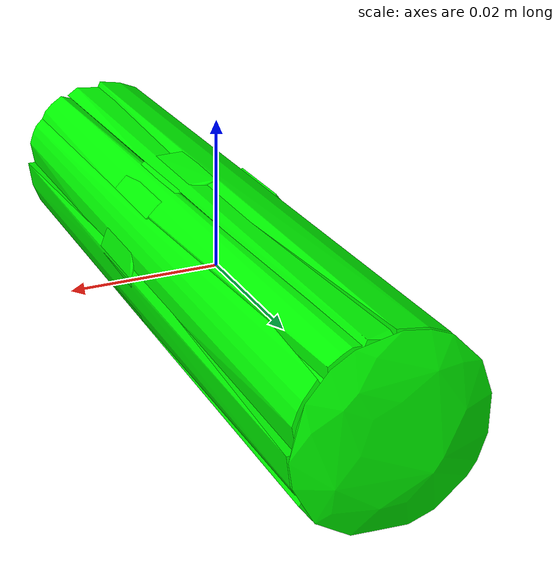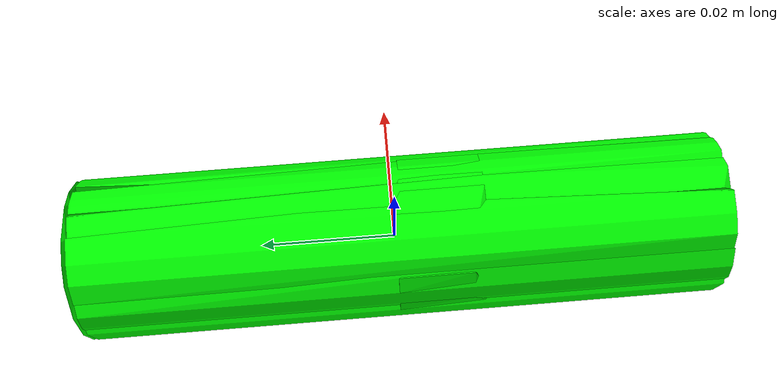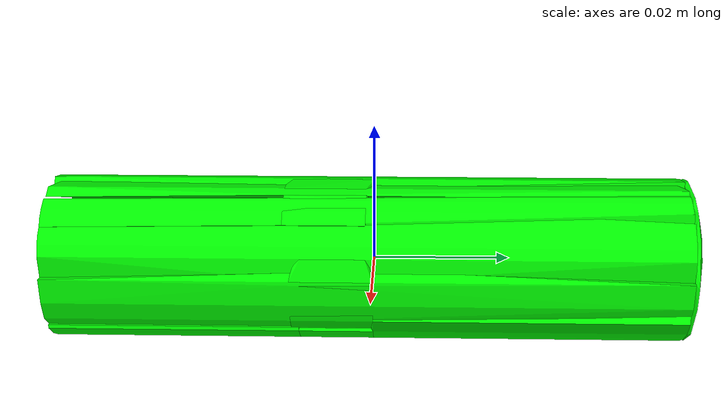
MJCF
<mujoco model="shapenet42-2">
  <asset>
    <mesh file="meshes/shapenet42-2/shapenet42-2_0.stl" name="shapenet42-2_0" scale="0.1 0.1 0.1"/>
    <mesh file="meshes/shapenet42-2/shapenet42-2_1.stl" name="shapenet42-2_1" scale="0.1 0.1 0.1"/>
    <mesh file="meshes/shapenet42-2/shapenet42-2_2.stl" name="shapenet42-2_2" scale="0.1 0.1 0.1"/>
    <mesh file="meshes/shapenet42-2/shapenet42-2_3.stl" name="shapenet42-2_3" scale="0.1 0.1 0.1"/>
    <mesh file="meshes/shapenet42-2/shapenet42-2_4.stl" name="shapenet42-2_4" scale="0.1 0.1 0.1"/>
    <mesh file="meshes/shapenet42-2/shapenet42-2_5.stl" name="shapenet42-2_5" scale="0.1 0.1 0.1"/>
    <mesh file="meshes/shapenet42-2/shapenet42-2_6.stl" name="shapenet42-2_6" scale="0.1 0.1 0.1"/>
    <mesh file="meshes/shapenet42-2/shapenet42-2_7.stl" name="shapenet42-2_7" scale="0.1 0.1 0.1"/>
    <mesh file="meshes/shapenet42-2/shapenet42-2_8.stl" name="shapenet42-2_8" scale="0.1 0.1 0.1"/>
    <mesh file="meshes/shapenet42-2/shapenet42-2_9.stl" name="shapenet42-2_9" scale="0.1 0.1 0.1"/>
    <mesh file="meshes/shapenet42-2/shapenet42-2_10.stl" name="shapenet42-2_10" scale="0.1 0.1 0.1"/>
    <mesh file="meshes/shapenet42-2/shapenet42-2_11.stl" name="shapenet42-2_11" scale="0.1 0.1 0.1"/>
    <mesh file="meshes/shapenet42-2/shapenet42-2_12.stl" name="shapenet42-2_12" scale="0.1 0.1 0.1"/>
    <mesh file="meshes/shapenet42-2/shapenet42-2_13.stl" name="shapenet42-2_13" scale="0.1 0.1 0.1"/>
    <mesh file="meshes/shapenet42-2/shapenet42-2_14.stl" name="shapenet42-2_14" scale="0.1 0.1 0.1"/>
    <mesh file="meshes/shapenet42-2/shapenet42-2_15.stl" name="shapenet42-2_15" scale="0.1 0.1 0.1"/>
    <mesh file="meshes/shapenet42-2/shapenet42-2_16.stl" name="shapenet42-2_16" scale="0.1 0.1 0.1"/>
    <mesh file="meshes/shapenet42-2/shapenet42-2_17.stl" name="shapenet42-2_17" scale="0.1 0.1 0.1"/>
    <mesh file="meshes/shapenet42-2/shapenet42-2_18.stl" name="shapenet42-2_18" scale="0.1 0.1 0.1"/>
    <mesh file="meshes/shapenet42-2/shapenet42-2_19.stl" name="shapenet42-2_19" scale="0.1 0.1 0.1"/>
  </asset>
  <worldbody>
    <body>
      <body name="collision">
        <geom pos="0 0 0" mesh="shapenet42-2_0" type="mesh" solimp="0.998 0.998 0.001" solref="0.001 1" density="100" friction="0.95 0.3 0.1" rgba="0 1 0 1" group="1" condim="4"/>
        <geom pos="0 0 0" mesh="shapenet42-2_1" type="mesh" solimp="0.998 0.998 0.001" solref="0.001 1" density="100" friction="0.95 0.3 0.1" rgba="0 1 0 1" group="1" condim="4"/>
        <geom pos="0 0 0" mesh="shapenet42-2_2" type="mesh" solimp="0.998 0.998 0.001" solref="0.001 1" density="100" friction="0.95 0.3 0.1" rgba="0 1 0 1" group="1" condim="4"/>
        <geom pos="0 0 0" mesh="shapenet42-2_3" type="mesh" solimp="0.998 0.998 0.001" solref="0.001 1" density="100" friction="0.95 0.3 0.1" rgba="0 1 0 1" group="1" condim="4"/>
        <geom pos="0 0 0" mesh="shapenet42-2_4" type="mesh" solimp="0.998 0.998 0.001" solref="0.001 1" density="100" friction="0.95 0.3 0.1" rgba="0 1 0 1" group="1" condim="4"/>
        <geom pos="0 0 0" mesh="shapenet42-2_5" type="mesh" solimp="0.998 0.998 0.001" solref="0.001 1" density="100" friction="0.95 0.3 0.1" rgba="0 1 0 1" group="1" condim="4"/>
        <geom pos="0 0 0" mesh="shapenet42-2_6" type="mesh" solimp="0.998 0.998 0.001" solref="0.001 1" density="100" friction="0.95 0.3 0.1" rgba="0 1 0 1" group="1" condim="4"/>
        <geom pos="0 0 0" mesh="shapenet42-2_7" type="mesh" solimp="0.998 0.998 0.001" solref="0.001 1" density="100" friction="0.95 0.3 0.1" rgba="0 1 0 1" group="1" condim="4"/>
        <geom pos="0 0 0" mesh="shapenet42-2_8" type="mesh" solimp="0.998 0.998 0.001" solref="0.001 1" density="100" friction="0.95 0.3 0.1" rgba="0 1 0 1" group="1" condim="4"/>
        <geom pos="0 0 0" mesh="shapenet42-2_9" type="mesh" solimp="0.998 0.998 0.001" solref="0.001 1" density="100" friction="0.95 0.3 0.1" rgba="0 1 0 1" group="1" condim="4"/>
        <geom pos="0 0 0" mesh="shapenet42-2_10" type="mesh" solimp="0.998 0.998 0.001" solref="0.001 1" density="100" friction="0.95 0.3 0.1" rgba="0 1 0 1" group="1" condim="4"/>
        <geom pos="0 0 0" mesh="shapenet42-2_11" type="mesh" solimp="0.998 0.998 0.001" solref="0.001 1" density="100" friction="0.95 0.3 0.1" rgba="0 1 0 1" group="1" condim="4"/>
        <geom pos="0 0 0" mesh="shapenet42-2_12" type="mesh" solimp="0.998 0.998 0.001" solref="0.001 1" density="100" friction="0.95 0.3 0.1" rgba="0 1 0 1" group="1" condim="4"/>
        <geom pos="0 0 0" mesh="shapenet42-2_13" type="mesh" solimp="0.998 0.998 0.001" solref="0.001 1" density="100" friction="0.95 0.3 0.1" rgba="0 1 0 1" group="1" condim="4"/>
        <geom pos="0 0 0" mesh="shapenet42-2_14" type="mesh" solimp="0.998 0.998 0.001" solref="0.001 1" density="100" friction="0.95 0.3 0.1" rgba="0 1 0 1" group="1" condim="4"/>
        <geom pos="0 0 0" mesh="shapenet42-2_15" type="mesh" solimp="0.998 0.998 0.001" solref="0.001 1" density="100" friction="0.95 0.3 0.1" rgba="0 1 0 1" group="1" condim="4"/>
        <geom pos="0 0 0" mesh="shapenet42-2_16" type="mesh" solimp="0.998 0.998 0.001" solref="0.001 1" density="100" friction="0.95 0.3 0.1" rgba="0 1 0 1" group="1" condim="4"/>
        <geom pos="0 0 0" mesh="shapenet42-2_17" type="mesh" solimp="0.998 0.998 0.001" solref="0.001 1" density="100" friction="0.95 0.3 0.1" rgba="0 1 0 1" group="1" condim="4"/>
        <geom pos="0 0 0" mesh="shapenet42-2_18" type="mesh" solimp="0.998 0.998 0.001" solref="0.001 1" density="100" friction="0.95 0.3 0.1" rgba="0 1 0 1" group="1" condim="4"/>
        <geom pos="0 0 0" mesh="shapenet42-2_19" type="mesh" solimp="0.998 0.998 0.001" solref="0.001 1" density="100" friction="0.95 0.3 0.1" rgba="0 1 0 1" group="1" condim="4"/>
      </body>
      <body name="visual">
        <geom pos="0 0 0" mesh="shapenet42-2_0" type="mesh" rgba="0 1 0 1" conaffinity="0" contype="0" group="0" mass="0.0001"/>
        <geom pos="0 0 0" mesh="shapenet42-2_1" type="mesh" rgba="0 1 0 1" conaffinity="0" contype="0" group="0" mass="0.0001"/>
        <geom pos="0 0 0" mesh="shapenet42-2_2" type="mesh" rgba="0 1 0 1" conaffinity="0" contype="0" group="0" mass="0.0001"/>
        <geom pos="0 0 0" mesh="shapenet42-2_3" type="mesh" rgba="0 1 0 1" conaffinity="0" contype="0" group="0" mass="0.0001"/>
        <geom pos="0 0 0" mesh="shapenet42-2_4" type="mesh" rgba="0 1 0 1" conaffinity="0" contype="0" group="0" mass="0.0001"/>
        <geom pos="0 0 0" mesh="shapenet42-2_5" type="mesh" rgba="0 1 0 1" conaffinity="0" contype="0" group="0" mass="0.0001"/>
        <geom pos="0 0 0" mesh="shapenet42-2_6" type="mesh" rgba="0 1 0 1" conaffinity="0" contype="0" group="0" mass="0.0001"/>
        <geom pos="0 0 0" mesh="shapenet42-2_7" type="mesh" rgba="0 1 0 1" conaffinity="0" contype="0" group="0" mass="0.0001"/>
        <geom pos="0 0 0" mesh="shapenet42-2_8" type="mesh" rgba="0 1 0 1" conaffinity="0" contype="0" group="0" mass="0.0001"/>
        <geom pos="0 0 0" mesh="shapenet42-2_9" type="mesh" rgba="0 1 0 1" conaffinity="0" contype="0" group="0" mass="0.0001"/>
        <geom pos="0 0 0" mesh="shapenet42-2_10" type="mesh" rgba="0 1 0 1" conaffinity="0" contype="0" group="0" mass="0.0001"/>
        <geom pos="0 0 0" mesh="shapenet42-2_11" type="mesh" rgba="0 1 0 1" conaffinity="0" contype="0" group="0" mass="0.0001"/>
        <geom pos="0 0 0" mesh="shapenet42-2_12" type="mesh" rgba="0 1 0 1" conaffinity="0" contype="0" group="0" mass="0.0001"/>
        <geom pos="0 0 0" mesh="shapenet42-2_13" type="mesh" rgba="0 1 0 1" conaffinity="0" contype="0" group="0" mass="0.0001"/>
        <geom pos="0 0 0" mesh="shapenet42-2_14" type="mesh" rgba="0 1 0 1" conaffinity="0" contype="0" group="0" mass="0.0001"/>
        <geom pos="0 0 0" mesh="shapenet42-2_15" type="mesh" rgba="0 1 0 1" conaffinity="0" contype="0" group="0" mass="0.0001"/>
        <geom pos="0 0 0" mesh="shapenet42-2_16" type="mesh" rgba="0 1 0 1" conaffinity="0" contype="0" group="0" mass="0.0001"/>
        <geom pos="0 0 0" mesh="shapenet42-2_17" type="mesh" rgba="0 1 0 1" conaffinity="0" contype="0" group="0" mass="0.0001"/>
        <geom pos="0 0 0" mesh="shapenet42-2_18" type="mesh" rgba="0 1 0 1" conaffinity="0" contype="0" group="0" mass="0.0001"/>
        <geom pos="0 0 0" mesh="shapenet42-2_19" type="mesh" rgba="0 1 0 1" conaffinity="0" contype="0" group="0" mass="0.0001"/>
      </body>
      <site rgba="0 0 0 0" size="0.005" pos="0 0 -0.06" name="bottom_site"/>
      <site rgba="0 0 0 0" size="0.005" pos="0 0 0.04" name="top_site"/>
      <site rgba="0 0 0 0" size="0.005" pos="0.025 0.025 0" name="horizontal_radius_site"/>
    </body>
  </worldbody>
</mujoco>
